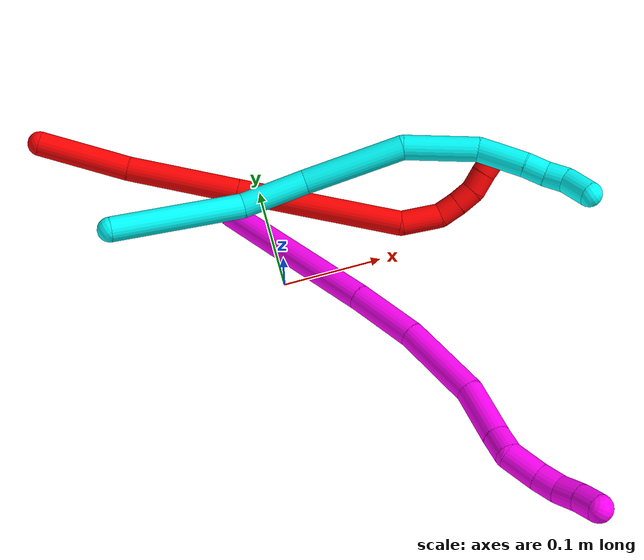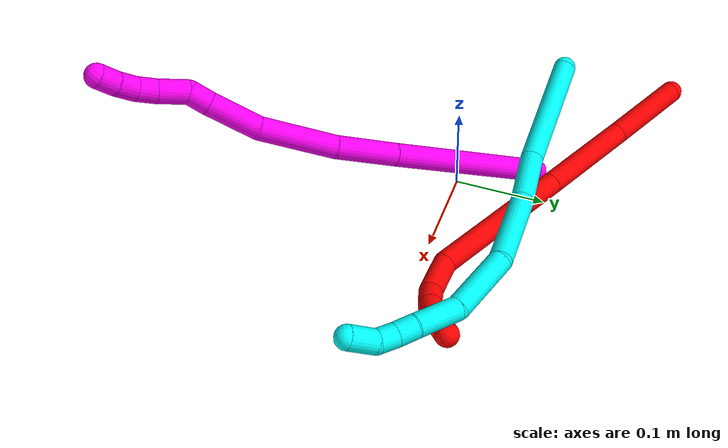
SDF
<sdf version="1.7">
 <world name="default">
  <model name="2">
   <static>0</static>
   <link name="2">
    <collision name="collision-cylinder-e_1_1_4">
     <pose>0.030949 -0.01481 -0.031613 2.70348 0.72533 2.08041</pose>
     <geometry><cylinder><radius>0.0125</radius><length>0.093306</length></cylinder></geometry>
     <surface>
      <friction><ode><mu>1.16</mu><mu2>1.16</mu2><slip1>0</slip1><slip2>0</slip2></ode></friction>
      <contact><ode><kp>1e+06</kp><kd>1</kd><max_vel>0</max_vel><min_depth>0.001</min_depth></ode></contact>
     </surface>
    </collision>
    <visual name="visual-cylinder-e_1_1_4">
     <pose>0.030949 -0.01481 -0.031613 2.70348 0.72533 2.08041</pose>
     <geometry><cylinder><radius>0.0125</radius><length>0.093306</length></cylinder></geometry>
     <material><ambient>1 0 0 1</ambient></material>
    </visual>
    <collision name="collision-cylinder-e_2_4_5">
     <pose>0.102061 -0.051622 -0.097663 2.57306 0.776726 1.90131</pose>
     <geometry><cylinder><radius>0.0125</radius><length>0.114597</length></cylinder></geometry>
     <surface>
      <friction><ode><mu>1.16</mu><mu2>1.16</mu2><slip1>0</slip1><slip2>0</slip2></ode></friction>
      <contact><ode><kp>1e+06</kp><kd>1</kd><max_vel>0</max_vel><min_depth>0.001</min_depth></ode></contact>
     </surface>
    </collision>
    <visual name="visual-cylinder-e_2_4_5">
     <pose>0.102061 -0.051622 -0.097663 2.57306 0.776726 1.90131</pose>
     <geometry><cylinder><radius>0.0125</radius><length>0.114597</length></cylinder></geometry>
     <material><ambient>1 0 0 1</ambient></material>
    </visual>
    <collision name="collision-cylinder-e_3_5_6">
     <pose>0.201324 -0.107155 -0.181868 2.5487 0.77775 1.86041</pose>
     <geometry><cylinder><radius>0.0125</radius><length>0.168451</length></cylinder></geometry>
     <surface>
      <friction><ode><mu>1.16</mu><mu2>1.16</mu2><slip1>0</slip1><slip2>0</slip2></ode></friction>
      <contact><ode><kp>1e+06</kp><kd>1</kd><max_vel>0</max_vel><min_depth>0.001</min_depth></ode></contact>
     </surface>
    </collision>
    <visual name="visual-cylinder-e_3_5_6">
     <pose>0.201324 -0.107155 -0.181868 2.5487 0.77775 1.86041</pose>
     <geometry><cylinder><radius>0.0125</radius><length>0.168451</length></cylinder></geometry>
     <material><ambient>1 0 0 1</ambient></material>
    </visual>
    <collision name="collision-cylinder-e_4_6_7">
     <pose>0.279253 -0.144492 -0.238006 2.60297 1.19545 2.37124</pose>
     <geometry><cylinder><radius>0.0125</radius><length>0.040479</length></cylinder></geometry>
     <surface>
      <friction><ode><mu>1.16</mu><mu2>1.16</mu2><slip1>0</slip1><slip2>0</slip2></ode></friction>
      <contact><ode><kp>1e+06</kp><kd>1</kd><max_vel>0</max_vel><min_depth>0.001</min_depth></ode></contact>
     </surface>
    </collision>
    <visual name="visual-cylinder-e_4_6_7">
     <pose>0.279253 -0.144492 -0.238006 2.60297 1.19545 2.37124</pose>
     <geometry><cylinder><radius>0.0125</radius><length>0.040479</length></cylinder></geometry>
     <material><ambient>1 0 0 1</ambient></material>
    </visual>
    <collision name="collision-cylinder-e_5_7_8">
     <pose>0.308418 -0.150698 -0.243122 1.08958 1.31458 0.874889</pose>
     <geometry><cylinder><radius>0.0125</radius><length>0.021366</length></cylinder></geometry>
     <surface>
      <friction><ode><mu>1.16</mu><mu2>1.16</mu2><slip1>0</slip1><slip2>0</slip2></ode></friction>
      <contact><ode><kp>1e+06</kp><kd>1</kd><max_vel>0</max_vel><min_depth>0.001</min_depth></ode></contact>
     </surface>
    </collision>
    <visual name="visual-cylinder-e_5_7_8">
     <pose>0.308418 -0.150698 -0.243122 1.08958 1.31458 0.874889</pose>
     <geometry><cylinder><radius>0.0125</radius><length>0.021366</length></cylinder></geometry>
     <material><ambient>1 0 0 1</ambient></material>
    </visual>
    <collision name="collision-cylinder-e_6_8_9">
     <pose>0.328295 -0.155304 -0.239694 0.792434 1.2569 0.590291</pose>
     <geometry><cylinder><radius>0.0125</radius><length>0.020066</length></cylinder></geometry>
     <surface>
      <friction><ode><mu>1.16</mu><mu2>1.16</mu2><slip1>0</slip1><slip2>0</slip2></ode></friction>
      <contact><ode><kp>1e+06</kp><kd>1</kd><max_vel>0</max_vel><min_depth>0.001</min_depth></ode></contact>
     </surface>
    </collision>
    <visual name="visual-cylinder-e_6_8_9">
     <pose>0.328295 -0.155304 -0.239694 0.792434 1.2569 0.590291</pose>
     <geometry><cylinder><radius>0.0125</radius><length>0.020066</length></cylinder></geometry>
     <material><ambient>1 0 0 1</ambient></material>
    </visual>
    <collision name="collision-cylinder-e_7_9_10">
     <pose>0.34649 -0.158863 -0.231939 0.237995 0.984887 0.128122</pose>
     <geometry><cylinder><radius>0.0125</radius><length>0.020768</length></cylinder></geometry>
     <surface>
      <friction><ode><mu>1.16</mu><mu2>1.16</mu2><slip1>0</slip1><slip2>0</slip2></ode></friction>
      <contact><ode><kp>1e+06</kp><kd>1</kd><max_vel>0</max_vel><min_depth>0.001</min_depth></ode></contact>
     </surface>
    </collision>
    <visual name="visual-cylinder-e_7_9_10">
     <pose>0.34649 -0.158863 -0.231939 0.237995 0.984887 0.128122</pose>
     <geometry><cylinder><radius>0.0125</radius><length>0.020768</length></cylinder></geometry>
     <material><ambient>1 0 0 1</ambient></material>
    </visual>
    <collision name="collision-cylinder-e_8_10_2">
     <pose>0.364251 -0.161528 -0.221338 0.255519 1.053 0.149052</pose>
     <geometry><cylinder><radius>0.0125</radius><length>0.020967</length></cylinder></geometry>
     <surface>
      <friction><ode><mu>1.16</mu><mu2>1.16</mu2><slip1>0</slip1><slip2>0</slip2></ode></friction>
      <contact><ode><kp>1e+06</kp><kd>1</kd><max_vel>0</max_vel><min_depth>0.001</min_depth></ode></contact>
     </surface>
    </collision>
    <visual name="visual-cylinder-e_8_10_2">
     <pose>0.364251 -0.161528 -0.221338 0.255519 1.053 0.149052</pose>
     <geometry><cylinder><radius>0.0125</radius><length>0.020967</length></cylinder></geometry>
     <material><ambient>1 0 0 1</ambient></material>
    </visual>
    <collision name="collision-sphere-2">
     <pose>0.37336 -0.16284 -0.216318 0 -0 0</pose>
     <geometry><sphere><radius>0.0125</radius></sphere></geometry>
     <surface>
      <friction><ode><mu>1.16</mu><mu2>1.16</mu2><slip1>0</slip1><slip2>0</slip2></ode></friction>
      <contact><ode><kp>1e+06</kp><kd>1</kd><max_vel>0</max_vel><min_depth>0.001</min_depth></ode></contact>
     </surface>
    </collision>
    <visual name="visual-sphere-2">
     <pose>0.37336 -0.16284 -0.216318 0 -0 0</pose>
     <geometry><sphere><radius>0.0125</radius></sphere></geometry>
     <material><ambient>1 0 0 1</ambient></material>
    </visual>
    <collision name="collision-sphere-10">
     <pose>0.355141 -0.160217 -0.226359 0 -0 0</pose>
     <geometry><sphere><radius>0.0125</radius></sphere></geometry>
     <surface>
      <friction><ode><mu>1.16</mu><mu2>1.16</mu2><slip1>0</slip1><slip2>0</slip2></ode></friction>
      <contact><ode><kp>1e+06</kp><kd>1</kd><max_vel>0</max_vel><min_depth>0.001</min_depth></ode></contact>
     </surface>
    </collision>
    <visual name="visual-sphere-10">
     <pose>0.355141 -0.160217 -0.226359 0 -0 0</pose>
     <geometry><sphere><radius>0.0125</radius></sphere></geometry>
     <material><ambient>1 0 0 1</ambient></material>
    </visual>
    <collision name="collision-sphere-9">
     <pose>0.337838 -0.15751 -0.237519 0 -0 0</pose>
     <geometry><sphere><radius>0.0125</radius></sphere></geometry>
     <surface>
      <friction><ode><mu>1.16</mu><mu2>1.16</mu2><slip1>0</slip1><slip2>0</slip2></ode></friction>
      <contact><ode><kp>1e+06</kp><kd>1</kd><max_vel>0</max_vel><min_depth>0.001</min_depth></ode></contact>
     </surface>
    </collision>
    <visual name="visual-sphere-9">
     <pose>0.337838 -0.15751 -0.237519 0 -0 0</pose>
     <geometry><sphere><radius>0.0125</radius></sphere></geometry>
     <material><ambient>1 0 0 1</ambient></material>
    </visual>
    <collision name="collision-sphere-4">
     <pose>0.061898 -0.029619 -0.063225 0 -0 0</pose>
     <geometry><sphere><radius>0.0125</radius></sphere></geometry>
     <surface>
      <friction><ode><mu>1.16</mu><mu2>1.16</mu2><slip1>0</slip1><slip2>0</slip2></ode></friction>
      <contact><ode><kp>1e+06</kp><kd>1</kd><max_vel>0</max_vel><min_depth>0.001</min_depth></ode></contact>
     </surface>
    </collision>
    <visual name="visual-sphere-4">
     <pose>0.061898 -0.029619 -0.063225 0 -0 0</pose>
     <geometry><sphere><radius>0.0125</radius></sphere></geometry>
     <material><ambient>1 0 0 1</ambient></material>
    </visual>
    <collision name="collision-sphere-1">
     <geometry><sphere><radius>0.0125</radius></sphere></geometry>
     <surface>
      <friction><ode><mu>1.16</mu><mu2>1.16</mu2><slip1>0</slip1><slip2>0</slip2></ode></friction>
      <contact><ode><kp>1e+06</kp><kd>1</kd><max_vel>0</max_vel><min_depth>0.001</min_depth></ode></contact>
     </surface>
    </collision>
    <visual name="visual-sphere-1">
     <geometry><sphere><radius>0.0125</radius></sphere></geometry>
     <material><ambient>1 0 0 1</ambient></material>
    </visual>
    <collision name="collision-sphere-8">
     <pose>0.318752 -0.153098 -0.241869 0 -0 0</pose>
     <geometry><sphere><radius>0.0125</radius></sphere></geometry>
     <surface>
      <friction><ode><mu>1.16</mu><mu2>1.16</mu2><slip1>0</slip1><slip2>0</slip2></ode></friction>
      <contact><ode><kp>1e+06</kp><kd>1</kd><max_vel>0</max_vel><min_depth>0.001</min_depth></ode></contact>
     </surface>
    </collision>
    <visual name="visual-sphere-8">
     <pose>0.318752 -0.153098 -0.241869 0 -0 0</pose>
     <geometry><sphere><radius>0.0125</radius></sphere></geometry>
     <material><ambient>1 0 0 1</ambient></material>
    </visual>
    <collision name="collision-sphere-5">
     <pose>0.142225 -0.073624 -0.1321 0 -0 0</pose>
     <geometry><sphere><radius>0.0125</radius></sphere></geometry>
     <surface>
      <friction><ode><mu>1.16</mu><mu2>1.16</mu2><slip1>0</slip1><slip2>0</slip2></ode></friction>
      <contact><ode><kp>1e+06</kp><kd>1</kd><max_vel>0</max_vel><min_depth>0.001</min_depth></ode></contact>
     </surface>
    </collision>
    <visual name="visual-sphere-5">
     <pose>0.142225 -0.073624 -0.1321 0 -0 0</pose>
     <geometry><sphere><radius>0.0125</radius></sphere></geometry>
     <material><ambient>1 0 0 1</ambient></material>
    </visual>
    <collision name="collision-sphere-6">
     <pose>0.260423 -0.140686 -0.231637 0 -0 0</pose>
     <geometry><sphere><radius>0.0125</radius></sphere></geometry>
     <surface>
      <friction><ode><mu>1.16</mu><mu2>1.16</mu2><slip1>0</slip1><slip2>0</slip2></ode></friction>
      <contact><ode><kp>1e+06</kp><kd>1</kd><max_vel>0</max_vel><min_depth>0.001</min_depth></ode></contact>
     </surface>
    </collision>
    <visual name="visual-sphere-6">
     <pose>0.260423 -0.140686 -0.231637 0 -0 0</pose>
     <geometry><sphere><radius>0.0125</radius></sphere></geometry>
     <material><ambient>1 0 0 1</ambient></material>
    </visual>
    <collision name="collision-sphere-7">
     <pose>0.298084 -0.148298 -0.244375 0 -0 0</pose>
     <geometry><sphere><radius>0.0125</radius></sphere></geometry>
     <surface>
      <friction><ode><mu>1.16</mu><mu2>1.16</mu2><slip1>0</slip1><slip2>0</slip2></ode></friction>
      <contact><ode><kp>1e+06</kp><kd>1</kd><max_vel>0</max_vel><min_depth>0.001</min_depth></ode></contact>
     </surface>
    </collision>
    <visual name="visual-sphere-7">
     <pose>0.298084 -0.148298 -0.244375 0 -0 0</pose>
     <geometry><sphere><radius>0.0125</radius></sphere></geometry>
     <material><ambient>1 0 0 1</ambient></material>
    </visual>
    <inertial>
     <pose>0.175622 -0.088438 -0.147747 0 -0 0</pose>
     <mass>0.5</mass>
     <inertia>
      <ixx>0.000304</ixx>
      <ixy>0</ixy>
      <ixz>0</ixz>
      <iyy>0.000792</iyy>
      <iyz>0</iyz>
      <izz>-0.000216</izz>
     </inertia>
    </inertial>
   </link>
   <pose>-0.203118 0.202607 0.023181 -0.99024 0.00556 0.319963</pose>
  </model>
  <model name="3">
   <static>0</static>
   <link name="3">
    <collision name="collision-cylinder-e_1_1_4">
     <pose>0.037939 0.007708 0.054569 -0.140324 0.602907 -0.043696</pose>
     <geometry><cylinder><radius>0.0125</radius><length>0.133814</length></cylinder></geometry>
     <surface>
      <friction><ode><mu>1.16</mu><mu2>1.16</mu2><slip1>0</slip1><slip2>0</slip2></ode></friction>
      <contact><ode><kp>1e+06</kp><kd>1</kd><max_vel>0</max_vel><min_depth>0.001</min_depth></ode></contact>
     </surface>
    </collision>
    <visual name="visual-cylinder-e_1_1_4">
     <pose>0.037939 0.007708 0.054569 -0.140324 0.602907 -0.043696</pose>
     <geometry><cylinder><radius>0.0125</radius><length>0.133814</length></cylinder></geometry>
     <material><ambient>0.003922 1 0.996078 1</ambient></material>
    </visual>
    <collision name="collision-cylinder-e_2_4_5">
     <pose>0.087547 0.017981 0.140359 -0.081979 0.356571 -0.014781</pose>
     <geometry><cylinder><radius>0.0125</radius><length>0.066859</length></cylinder></geometry>
     <surface>
      <friction><ode><mu>1.16</mu><mu2>1.16</mu2><slip1>0</slip1><slip2>0</slip2></ode></friction>
      <contact><ode><kp>1e+06</kp><kd>1</kd><max_vel>0</max_vel><min_depth>0.001</min_depth></ode></contact>
     </surface>
    </collision>
    <visual name="visual-cylinder-e_2_4_5">
     <pose>0.087547 0.017981 0.140359 -0.081979 0.356571 -0.014781</pose>
     <geometry><cylinder><radius>0.0125</radius><length>0.066859</length></cylinder></geometry>
     <material><ambient>0.003922 1 0.996078 1</ambient></material>
    </visual>
    <collision name="collision-cylinder-e_3_5_6">
     <pose>0.113954 0.017104 0.220699 0.069967 0.290835 0.010251</pose>
     <geometry><cylinder><radius>0.0125</radius><length>0.102794</length></cylinder></geometry>
     <surface>
      <friction><ode><mu>1.16</mu><mu2>1.16</mu2><slip1>0</slip1><slip2>0</slip2></ode></friction>
      <contact><ode><kp>1e+06</kp><kd>1</kd><max_vel>0</max_vel><min_depth>0.001</min_depth></ode></contact>
     </surface>
    </collision>
    <visual name="visual-cylinder-e_3_5_6">
     <pose>0.113954 0.017104 0.220699 0.069967 0.290835 0.010251</pose>
     <geometry><cylinder><radius>0.0125</radius><length>0.102794</length></cylinder></geometry>
     <material><ambient>0.003922 1 0.996078 1</ambient></material>
    </visual>
    <collision name="collision-cylinder-e_4_6_7">
     <pose>0.149969 0.004996 0.299352 0.285395 0.60482 0.089587</pose>
     <geometry><cylinder><radius>0.0125</radius><length>0.074837</length></cylinder></geometry>
     <surface>
      <friction><ode><mu>1.16</mu><mu2>1.16</mu2><slip1>0</slip1><slip2>0</slip2></ode></friction>
      <contact><ode><kp>1e+06</kp><kd>1</kd><max_vel>0</max_vel><min_depth>0.001</min_depth></ode></contact>
     </surface>
    </collision>
    <visual name="visual-cylinder-e_4_6_7">
     <pose>0.149969 0.004996 0.299352 0.285395 0.60482 0.089587</pose>
     <geometry><cylinder><radius>0.0125</radius><length>0.074837</length></cylinder></geometry>
     <material><ambient>0.003922 1 0.996078 1</ambient></material>
    </visual>
    <collision name="collision-cylinder-e_5_7_8">
     <pose>0.18539 -0.017212 0.343272 0.755256 0.62134 0.253348</pose>
     <geometry><cylinder><radius>0.0125</radius><length>0.048595</length></cylinder></geometry>
     <surface>
      <friction><ode><mu>1.16</mu><mu2>1.16</mu2><slip1>0</slip1><slip2>0</slip2></ode></friction>
      <contact><ode><kp>1e+06</kp><kd>1</kd><max_vel>0</max_vel><min_depth>0.001</min_depth></ode></contact>
     </surface>
    </collision>
    <visual name="visual-cylinder-e_5_7_8">
     <pose>0.18539 -0.017212 0.343272 0.755256 0.62134 0.253348</pose>
     <geometry><cylinder><radius>0.0125</radius><length>0.048595</length></cylinder></geometry>
     <material><ambient>0.003922 1 0.996078 1</ambient></material>
    </visual>
    <collision name="collision-cylinder-e_6_8_9">
     <pose>0.207014 -0.03659 0.36338 0.79513 0.741137 0.323447</pose>
     <geometry><cylinder><radius>0.0125</radius><length>0.02216</length></cylinder></geometry>
     <surface>
      <friction><ode><mu>1.16</mu><mu2>1.16</mu2><slip1>0</slip1><slip2>0</slip2></ode></friction>
      <contact><ode><kp>1e+06</kp><kd>1</kd><max_vel>0</max_vel><min_depth>0.001</min_depth></ode></contact>
     </surface>
    </collision>
    <visual name="visual-cylinder-e_6_8_9">
     <pose>0.207014 -0.03659 0.36338 0.79513 0.741137 0.323447</pose>
     <geometry><cylinder><radius>0.0125</radius><length>0.02216</length></cylinder></geometry>
     <material><ambient>0.003922 1 0.996078 1</ambient></material>
    </visual>
    <collision name="collision-cylinder-e_7_9_10">
     <pose>0.219983 -0.048774 0.375449 0.785545 0.548796 0.232201</pose>
     <geometry><cylinder><radius>0.0125</radius><length>0.021042</length></cylinder></geometry>
     <surface>
      <friction><ode><mu>1.16</mu><mu2>1.16</mu2><slip1>0</slip1><slip2>0</slip2></ode></friction>
      <contact><ode><kp>1e+06</kp><kd>1</kd><max_vel>0</max_vel><min_depth>0.001</min_depth></ode></contact>
     </surface>
    </collision>
    <visual name="visual-cylinder-e_7_9_10">
     <pose>0.219983 -0.048774 0.375449 0.785545 0.548796 0.232201</pose>
     <geometry><cylinder><radius>0.0125</radius><length>0.021042</length></cylinder></geometry>
     <material><ambient>0.003922 1 0.996078 1</ambient></material>
    </visual>
    <collision name="collision-cylinder-e_8_10_2">
     <pose>0.230045 -0.068361 0.387021 1.19484 0.310914 0.212451</pose>
     <geometry><cylinder><radius>0.0125</radius><length>0.0299</length></cylinder></geometry>
     <surface>
      <friction><ode><mu>1.16</mu><mu2>1.16</mu2><slip1>0</slip1><slip2>0</slip2></ode></friction>
      <contact><ode><kp>1e+06</kp><kd>1</kd><max_vel>0</max_vel><min_depth>0.001</min_depth></ode></contact>
     </surface>
    </collision>
    <visual name="visual-cylinder-e_8_10_2">
     <pose>0.230045 -0.068361 0.387021 1.19484 0.310914 0.212451</pose>
     <geometry><cylinder><radius>0.0125</radius><length>0.0299</length></cylinder></geometry>
     <material><ambient>0.003922 1 0.996078 1</ambient></material>
    </visual>
    <collision name="collision-sphere-2">
     <pose>0.234618 -0.0816 0.392247 0 -0 0</pose>
     <geometry><sphere><radius>0.0125</radius></sphere></geometry>
     <surface>
      <friction><ode><mu>1.16</mu><mu2>1.16</mu2><slip1>0</slip1><slip2>0</slip2></ode></friction>
      <contact><ode><kp>1e+06</kp><kd>1</kd><max_vel>0</max_vel><min_depth>0.001</min_depth></ode></contact>
     </surface>
    </collision>
    <visual name="visual-sphere-2">
     <pose>0.234618 -0.0816 0.392247 0 -0 0</pose>
     <geometry><sphere><radius>0.0125</radius></sphere></geometry>
     <material><ambient>0.003922 1 0.996078 1</ambient></material>
    </visual>
    <collision name="collision-sphere-10">
     <pose>0.225471 -0.055122 0.381795 0 -0 0</pose>
     <geometry><sphere><radius>0.0125</radius></sphere></geometry>
     <surface>
      <friction><ode><mu>1.16</mu><mu2>1.16</mu2><slip1>0</slip1><slip2>0</slip2></ode></friction>
      <contact><ode><kp>1e+06</kp><kd>1</kd><max_vel>0</max_vel><min_depth>0.001</min_depth></ode></contact>
     </surface>
    </collision>
    <visual name="visual-sphere-10">
     <pose>0.225471 -0.055122 0.381795 0 -0 0</pose>
     <geometry><sphere><radius>0.0125</radius></sphere></geometry>
     <material><ambient>0.003922 1 0.996078 1</ambient></material>
    </visual>
    <collision name="collision-sphere-9">
     <pose>0.214495 -0.042426 0.369103 0 -0 0</pose>
     <geometry><sphere><radius>0.0125</radius></sphere></geometry>
     <surface>
      <friction><ode><mu>1.16</mu><mu2>1.16</mu2><slip1>0</slip1><slip2>0</slip2></ode></friction>
      <contact><ode><kp>1e+06</kp><kd>1</kd><max_vel>0</max_vel><min_depth>0.001</min_depth></ode></contact>
     </surface>
    </collision>
    <visual name="visual-sphere-9">
     <pose>0.214495 -0.042426 0.369103 0 -0 0</pose>
     <geometry><sphere><radius>0.0125</radius></sphere></geometry>
     <material><ambient>0.003922 1 0.996078 1</ambient></material>
    </visual>
    <collision name="collision-sphere-4">
     <pose>0.075878 0.015416 0.109138 0 -0 0</pose>
     <geometry><sphere><radius>0.0125</radius></sphere></geometry>
     <surface>
      <friction><ode><mu>1.16</mu><mu2>1.16</mu2><slip1>0</slip1><slip2>0</slip2></ode></friction>
      <contact><ode><kp>1e+06</kp><kd>1</kd><max_vel>0</max_vel><min_depth>0.001</min_depth></ode></contact>
     </surface>
    </collision>
    <visual name="visual-sphere-4">
     <pose>0.075878 0.015416 0.109138 0 -0 0</pose>
     <geometry><sphere><radius>0.0125</radius></sphere></geometry>
     <material><ambient>0.003922 1 0.996078 1</ambient></material>
    </visual>
    <collision name="collision-sphere-1">
     <geometry><sphere><radius>0.0125</radius></sphere></geometry>
     <surface>
      <friction><ode><mu>1.16</mu><mu2>1.16</mu2><slip1>0</slip1><slip2>0</slip2></ode></friction>
      <contact><ode><kp>1e+06</kp><kd>1</kd><max_vel>0</max_vel><min_depth>0.001</min_depth></ode></contact>
     </surface>
    </collision>
    <visual name="visual-sphere-1">
     <geometry><sphere><radius>0.0125</radius></sphere></geometry>
     <material><ambient>0.003922 1 0.996078 1</ambient></material>
    </visual>
    <collision name="collision-sphere-8">
     <pose>0.199534 -0.030754 0.357657 0 -0 0</pose>
     <geometry><sphere><radius>0.0125</radius></sphere></geometry>
     <surface>
      <friction><ode><mu>1.16</mu><mu2>1.16</mu2><slip1>0</slip1><slip2>0</slip2></ode></friction>
      <contact><ode><kp>1e+06</kp><kd>1</kd><max_vel>0</max_vel><min_depth>0.001</min_depth></ode></contact>
     </surface>
    </collision>
    <visual name="visual-sphere-8">
     <pose>0.199534 -0.030754 0.357657 0 -0 0</pose>
     <geometry><sphere><radius>0.0125</radius></sphere></geometry>
     <material><ambient>0.003922 1 0.996078 1</ambient></material>
    </visual>
    <collision name="collision-sphere-5">
     <pose>0.099216 0.020547 0.171581 0 -0 0</pose>
     <geometry><sphere><radius>0.0125</radius></sphere></geometry>
     <surface>
      <friction><ode><mu>1.16</mu><mu2>1.16</mu2><slip1>0</slip1><slip2>0</slip2></ode></friction>
      <contact><ode><kp>1e+06</kp><kd>1</kd><max_vel>0</max_vel><min_depth>0.001</min_depth></ode></contact>
     </surface>
    </collision>
    <visual name="visual-sphere-5">
     <pose>0.099216 0.020547 0.171581 0 -0 0</pose>
     <geometry><sphere><radius>0.0125</radius></sphere></geometry>
     <material><ambient>0.003922 1 0.996078 1</ambient></material>
    </visual>
    <collision name="collision-sphere-6">
     <pose>0.128692 0.013662 0.269817 0 -0 0</pose>
     <geometry><sphere><radius>0.0125</radius></sphere></geometry>
     <surface>
      <friction><ode><mu>1.16</mu><mu2>1.16</mu2><slip1>0</slip1><slip2>0</slip2></ode></friction>
      <contact><ode><kp>1e+06</kp><kd>1</kd><max_vel>0</max_vel><min_depth>0.001</min_depth></ode></contact>
     </surface>
    </collision>
    <visual name="visual-sphere-6">
     <pose>0.128692 0.013662 0.269817 0 -0 0</pose>
     <geometry><sphere><radius>0.0125</radius></sphere></geometry>
     <material><ambient>0.003922 1 0.996078 1</ambient></material>
    </visual>
    <collision name="collision-sphere-7">
     <pose>0.171245 -0.00367 0.328888 0 -0 0</pose>
     <geometry><sphere><radius>0.0125</radius></sphere></geometry>
     <surface>
      <friction><ode><mu>1.16</mu><mu2>1.16</mu2><slip1>0</slip1><slip2>0</slip2></ode></friction>
      <contact><ode><kp>1e+06</kp><kd>1</kd><max_vel>0</max_vel><min_depth>0.001</min_depth></ode></contact>
     </surface>
    </collision>
    <visual name="visual-sphere-7">
     <pose>0.171245 -0.00367 0.328888 0 -0 0</pose>
     <geometry><sphere><radius>0.0125</radius></sphere></geometry>
     <material><ambient>0.003922 1 0.996078 1</ambient></material>
    </visual>
    <inertial>
     <pose>0.117941 -0.000704 0.211962 0 -0 0</pose>
     <mass>0.5</mass>
     <inertia>
      <ixx>0.000349</ixx>
      <ixy>0</ixy>
      <ixz>0</ixz>
      <iyy>0.000369</iyy>
      <iyz>0</iyz>
      <izz>-0.000153</izz>
     </inertia>
    </inertial>
   </link>
   <pose>-0.152844 0.0809 0.067314 -1.08346 0.778526 -0.92884</pose>
  </model>
  <model name="10">
   <static>0</static>
   <link name="10">
    <collision name="collision-cylinder-e_1_1_4">
     <pose>0.046591 -0.057534 -0.049196 2.27823 0.551717 1.10203</pose>
     <geometry><cylinder><radius>0.0125</radius><length>0.177776</length></cylinder></geometry>
     <surface>
      <friction><ode><mu>1.16</mu><mu2>1.16</mu2><slip1>0</slip1><slip2>0</slip2></ode></friction>
      <contact><ode><kp>1e+06</kp><kd>1</kd><max_vel>0</max_vel><min_depth>0.001</min_depth></ode></contact>
     </surface>
    </collision>
    <visual name="visual-cylinder-e_1_1_4">
     <pose>0.046591 -0.057534 -0.049196 2.27823 0.551717 1.10203</pose>
     <geometry><cylinder><radius>0.0125</radius><length>0.177776</length></cylinder></geometry>
     <material><ambient>1 0 0.964706 1</ambient></material>
    </visual>
    <collision name="collision-cylinder-e_2_4_5">
     <pose>0.109895 -0.137887 -0.117093 2.25733 0.515412 1.01605</pose>
     <geometry><cylinder><radius>0.0125</radius><length>0.067817</length></cylinder></geometry>
     <surface>
      <friction><ode><mu>1.16</mu><mu2>1.16</mu2><slip1>0</slip1><slip2>0</slip2></ode></friction>
      <contact><ode><kp>1e+06</kp><kd>1</kd><max_vel>0</max_vel><min_depth>0.001</min_depth></ode></contact>
     </surface>
    </collision>
    <visual name="visual-cylinder-e_2_4_5">
     <pose>0.109895 -0.137887 -0.117093 2.25733 0.515412 1.01605</pose>
     <geometry><cylinder><radius>0.0125</radius><length>0.067817</length></cylinder></geometry>
     <material><ambient>1 0 0.964706 1</ambient></material>
    </visual>
    <collision name="collision-cylinder-e_3_5_6">
     <pose>0.143894 -0.192403 -0.155431 2.12546 0.43411 0.754192</pose>
     <geometry><cylinder><radius>0.0125</radius><length>0.082197</length></cylinder></geometry>
     <surface>
      <friction><ode><mu>1.16</mu><mu2>1.16</mu2><slip1>0</slip1><slip2>0</slip2></ode></friction>
      <contact><ode><kp>1e+06</kp><kd>1</kd><max_vel>0</max_vel><min_depth>0.001</min_depth></ode></contact>
     </surface>
    </collision>
    <visual name="visual-cylinder-e_3_5_6">
     <pose>0.143894 -0.192403 -0.155431 2.12546 0.43411 0.754192</pose>
     <geometry><cylinder><radius>0.0125</radius><length>0.082197</length></cylinder></geometry>
     <material><ambient>1 0 0.964706 1</ambient></material>
    </visual>
    <collision name="collision-cylinder-e_4_6_7">
     <pose>0.169522 -0.248742 -0.182923 1.87937 0.311998 0.423946</pose>
     <geometry><cylinder><radius>0.0125</radius><length>0.054353</length></cylinder></geometry>
     <surface>
      <friction><ode><mu>1.16</mu><mu2>1.16</mu2><slip1>0</slip1><slip2>0</slip2></ode></friction>
      <contact><ode><kp>1e+06</kp><kd>1</kd><max_vel>0</max_vel><min_depth>0.001</min_depth></ode></contact>
     </surface>
    </collision>
    <visual name="visual-cylinder-e_4_6_7">
     <pose>0.169522 -0.248742 -0.182923 1.87937 0.311998 0.423946</pose>
     <geometry><cylinder><radius>0.0125</radius><length>0.054353</length></cylinder></geometry>
     <material><ambient>1 0 0.964706 1</ambient></material>
    </visual>
    <collision name="collision-cylinder-e_5_7_8">
     <pose>0.182436 -0.283733 -0.193357 1.81503 0.404942 0.513833</pose>
     <geometry><cylinder><radius>0.0125</radius><length>0.023206</length></cylinder></geometry>
     <surface>
      <friction><ode><mu>1.16</mu><mu2>1.16</mu2><slip1>0</slip1><slip2>0</slip2></ode></friction>
      <contact><ode><kp>1e+06</kp><kd>1</kd><max_vel>0</max_vel><min_depth>0.001</min_depth></ode></contact>
     </surface>
    </collision>
    <visual name="visual-cylinder-e_5_7_8">
     <pose>0.182436 -0.283733 -0.193357 1.81503 0.404942 0.513833</pose>
     <geometry><cylinder><radius>0.0125</radius><length>0.023206</length></cylinder></geometry>
     <material><ambient>1 0 0.964706 1</ambient></material>
    </visual>
    <collision name="collision-cylinder-e_6_8_9">
     <pose>0.193869 -0.304061 -0.206335 2.37678 0.444367 1.02354</pose>
     <geometry><cylinder><radius>0.0125</radius><length>0.031925</length></cylinder></geometry>
     <surface>
      <friction><ode><mu>1.16</mu><mu2>1.16</mu2><slip1>0</slip1><slip2>0</slip2></ode></friction>
      <contact><ode><kp>1e+06</kp><kd>1</kd><max_vel>0</max_vel><min_depth>0.001</min_depth></ode></contact>
     </surface>
    </collision>
    <visual name="visual-cylinder-e_6_8_9">
     <pose>0.193869 -0.304061 -0.206335 2.37678 0.444367 1.02354</pose>
     <geometry><cylinder><radius>0.0125</radius><length>0.031925</length></cylinder></geometry>
     <material><ambient>1 0 0.964706 1</ambient></material>
    </visual>
    <collision name="collision-cylinder-e_7_9_10">
     <pose>0.206528 -0.320511 -0.222561 2.30385 0.587303 1.19326</pose>
     <geometry><cylinder><radius>0.0125</radius><length>0.020923</length></cylinder></geometry>
     <surface>
      <friction><ode><mu>1.16</mu><mu2>1.16</mu2><slip1>0</slip1><slip2>0</slip2></ode></friction>
      <contact><ode><kp>1e+06</kp><kd>1</kd><max_vel>0</max_vel><min_depth>0.001</min_depth></ode></contact>
     </surface>
    </collision>
    <visual name="visual-cylinder-e_7_9_10">
     <pose>0.206528 -0.320511 -0.222561 2.30385 0.587303 1.19326</pose>
     <geometry><cylinder><radius>0.0125</radius><length>0.020923</length></cylinder></geometry>
     <material><ambient>1 0 0.964706 1</ambient></material>
    </visual>
    <collision name="collision-cylinder-e_8_10_11">
     <pose>0.220251 -0.332985 -0.232413 2.16155 0.831549 1.38282</pose>
     <geometry><cylinder><radius>0.0125</radius><length>0.021451</length></cylinder></geometry>
     <surface>
      <friction><ode><mu>1.16</mu><mu2>1.16</mu2><slip1>0</slip1><slip2>0</slip2></ode></friction>
      <contact><ode><kp>1e+06</kp><kd>1</kd><max_vel>0</max_vel><min_depth>0.001</min_depth></ode></contact>
     </surface>
    </collision>
    <visual name="visual-cylinder-e_8_10_11">
     <pose>0.220251 -0.332985 -0.232413 2.16155 0.831549 1.38282</pose>
     <geometry><cylinder><radius>0.0125</radius><length>0.021451</length></cylinder></geometry>
     <material><ambient>1 0 0.964706 1</ambient></material>
    </visual>
    <collision name="collision-cylinder-e_9_11_2">
     <pose>0.235244 -0.345689 -0.239383 1.98482 0.76775 1.10808</pose>
     <geometry><cylinder><radius>0.0125</radius><length>0.020351</length></cylinder></geometry>
     <surface>
      <friction><ode><mu>1.16</mu><mu2>1.16</mu2><slip1>0</slip1><slip2>0</slip2></ode></friction>
      <contact><ode><kp>1e+06</kp><kd>1</kd><max_vel>0</max_vel><min_depth>0.001</min_depth></ode></contact>
     </surface>
    </collision>
    <visual name="visual-cylinder-e_9_11_2">
     <pose>0.235244 -0.345689 -0.239383 1.98482 0.76775 1.10808</pose>
     <geometry><cylinder><radius>0.0125</radius><length>0.020351</length></cylinder></geometry>
     <material><ambient>1 0 0.964706 1</ambient></material>
    </visual>
    <collision name="collision-sphere-2">
     <pose>0.242311 -0.352391 -0.242328 0 -0 0</pose>
     <geometry><sphere><radius>0.0125</radius></sphere></geometry>
     <surface>
      <friction><ode><mu>1.16</mu><mu2>1.16</mu2><slip1>0</slip1><slip2>0</slip2></ode></friction>
      <contact><ode><kp>1e+06</kp><kd>1</kd><max_vel>0</max_vel><min_depth>0.001</min_depth></ode></contact>
     </surface>
    </collision>
    <visual name="visual-sphere-2">
     <pose>0.242311 -0.352391 -0.242328 0 -0 0</pose>
     <geometry><sphere><radius>0.0125</radius></sphere></geometry>
     <material><ambient>1 0 0.964706 1</ambient></material>
    </visual>
    <collision name="collision-sphere-11">
     <pose>0.228177 -0.338986 -0.236438 0 -0 0</pose>
     <geometry><sphere><radius>0.0125</radius></sphere></geometry>
     <surface>
      <friction><ode><mu>1.16</mu><mu2>1.16</mu2><slip1>0</slip1><slip2>0</slip2></ode></friction>
      <contact><ode><kp>1e+06</kp><kd>1</kd><max_vel>0</max_vel><min_depth>0.001</min_depth></ode></contact>
     </surface>
    </collision>
    <visual name="visual-sphere-11">
     <pose>0.228177 -0.338986 -0.236438 0 -0 0</pose>
     <geometry><sphere><radius>0.0125</radius></sphere></geometry>
     <material><ambient>1 0 0.964706 1</ambient></material>
    </visual>
    <collision name="collision-sphere-10">
     <pose>0.212325 -0.326983 -0.228388 0 -0 0</pose>
     <geometry><sphere><radius>0.0125</radius></sphere></geometry>
     <surface>
      <friction><ode><mu>1.16</mu><mu2>1.16</mu2><slip1>0</slip1><slip2>0</slip2></ode></friction>
      <contact><ode><kp>1e+06</kp><kd>1</kd><max_vel>0</max_vel><min_depth>0.001</min_depth></ode></contact>
     </surface>
    </collision>
    <visual name="visual-sphere-10">
     <pose>0.212325 -0.326983 -0.228388 0 -0 0</pose>
     <geometry><sphere><radius>0.0125</radius></sphere></geometry>
     <material><ambient>1 0 0.964706 1</ambient></material>
    </visual>
    <collision name="collision-sphere-9">
     <pose>0.200731 -0.31404 -0.216733 0 -0 0</pose>
     <geometry><sphere><radius>0.0125</radius></sphere></geometry>
     <surface>
      <friction><ode><mu>1.16</mu><mu2>1.16</mu2><slip1>0</slip1><slip2>0</slip2></ode></friction>
      <contact><ode><kp>1e+06</kp><kd>1</kd><max_vel>0</max_vel><min_depth>0.001</min_depth></ode></contact>
     </surface>
    </collision>
    <visual name="visual-sphere-9">
     <pose>0.200731 -0.31404 -0.216733 0 -0 0</pose>
     <geometry><sphere><radius>0.0125</radius></sphere></geometry>
     <material><ambient>1 0 0.964706 1</ambient></material>
    </visual>
    <collision name="collision-sphere-4">
     <pose>0.093181 -0.115068 -0.098392 0 -0 0</pose>
     <geometry><sphere><radius>0.0125</radius></sphere></geometry>
     <surface>
      <friction><ode><mu>1.16</mu><mu2>1.16</mu2><slip1>0</slip1><slip2>0</slip2></ode></friction>
      <contact><ode><kp>1e+06</kp><kd>1</kd><max_vel>0</max_vel><min_depth>0.001</min_depth></ode></contact>
     </surface>
    </collision>
    <visual name="visual-sphere-4">
     <pose>0.093181 -0.115068 -0.098392 0 -0 0</pose>
     <geometry><sphere><radius>0.0125</radius></sphere></geometry>
     <material><ambient>1 0 0.964706 1</ambient></material>
    </visual>
    <collision name="collision-sphere-1">
     <geometry><sphere><radius>0.0125</radius></sphere></geometry>
     <surface>
      <friction><ode><mu>1.16</mu><mu2>1.16</mu2><slip1>0</slip1><slip2>0</slip2></ode></friction>
      <contact><ode><kp>1e+06</kp><kd>1</kd><max_vel>0</max_vel><min_depth>0.001</min_depth></ode></contact>
     </surface>
    </collision>
    <visual name="visual-sphere-1">
     <geometry><sphere><radius>0.0125</radius></sphere></geometry>
     <material><ambient>1 0 0.964706 1</ambient></material>
    </visual>
    <collision name="collision-sphere-8">
     <pose>0.187007 -0.294081 -0.195936 0 -0 0</pose>
     <geometry><sphere><radius>0.0125</radius></sphere></geometry>
     <surface>
      <friction><ode><mu>1.16</mu><mu2>1.16</mu2><slip1>0</slip1><slip2>0</slip2></ode></friction>
      <contact><ode><kp>1e+06</kp><kd>1</kd><max_vel>0</max_vel><min_depth>0.001</min_depth></ode></contact>
     </surface>
    </collision>
    <visual name="visual-sphere-8">
     <pose>0.187007 -0.294081 -0.195936 0 -0 0</pose>
     <geometry><sphere><radius>0.0125</radius></sphere></geometry>
     <material><ambient>1 0 0.964706 1</ambient></material>
    </visual>
    <collision name="collision-sphere-5">
     <pose>0.126608 -0.160707 -0.135794 0 -0 0</pose>
     <geometry><sphere><radius>0.0125</radius></sphere></geometry>
     <surface>
      <friction><ode><mu>1.16</mu><mu2>1.16</mu2><slip1>0</slip1><slip2>0</slip2></ode></friction>
      <contact><ode><kp>1e+06</kp><kd>1</kd><max_vel>0</max_vel><min_depth>0.001</min_depth></ode></contact>
     </surface>
    </collision>
    <visual name="visual-sphere-5">
     <pose>0.126608 -0.160707 -0.135794 0 -0 0</pose>
     <geometry><sphere><radius>0.0125</radius></sphere></geometry>
     <material><ambient>1 0 0.964706 1</ambient></material>
    </visual>
    <collision name="collision-sphere-6">
     <pose>0.16118 -0.224099 -0.175068 0 -0 0</pose>
     <geometry><sphere><radius>0.0125</radius></sphere></geometry>
     <surface>
      <friction><ode><mu>1.16</mu><mu2>1.16</mu2><slip1>0</slip1><slip2>0</slip2></ode></friction>
      <contact><ode><kp>1e+06</kp><kd>1</kd><max_vel>0</max_vel><min_depth>0.001</min_depth></ode></contact>
     </surface>
    </collision>
    <visual name="visual-sphere-6">
     <pose>0.16118 -0.224099 -0.175068 0 -0 0</pose>
     <geometry><sphere><radius>0.0125</radius></sphere></geometry>
     <material><ambient>1 0 0.964706 1</ambient></material>
    </visual>
    <collision name="collision-sphere-7">
     <pose>0.177865 -0.273385 -0.190778 0 -0 0</pose>
     <geometry><sphere><radius>0.0125</radius></sphere></geometry>
     <surface>
      <friction><ode><mu>1.16</mu><mu2>1.16</mu2><slip1>0</slip1><slip2>0</slip2></ode></friction>
      <contact><ode><kp>1e+06</kp><kd>1</kd><max_vel>0</max_vel><min_depth>0.001</min_depth></ode></contact>
     </surface>
    </collision>
    <visual name="visual-sphere-7">
     <pose>0.177865 -0.273385 -0.190778 0 -0 0</pose>
     <geometry><sphere><radius>0.0125</radius></sphere></geometry>
     <material><ambient>1 0 0.964706 1</ambient></material>
    </visual>
    <inertial>
     <pose>0.122067 -0.17218 -0.129987 0 -0 0</pose>
     <mass>0.5</mass>
     <inertia><ixx>0.000692</ixx><ixy>0</ixy><ixz>0</ixz><iyy>0.00042</iyy><iyz>0</iyz><izz>7.3e-05</izz></inertia>
    </inertial>
   </link>
   <pose>-0.033726 0.081626 0.011891 -0.681836 -0.893343 0.231008</pose>
  </model>
 </world>
</sdf>
